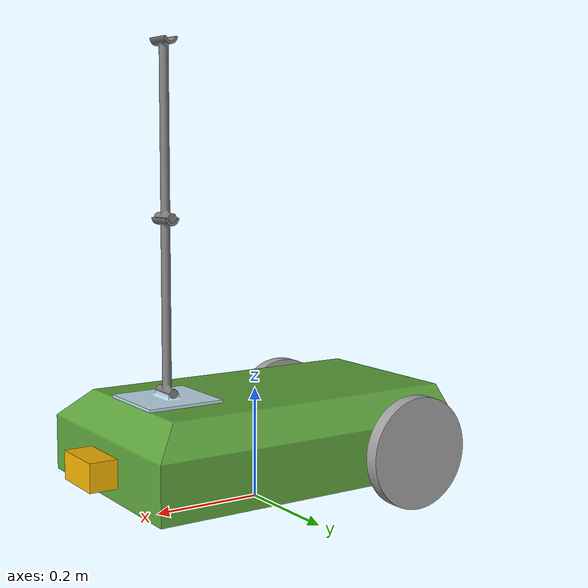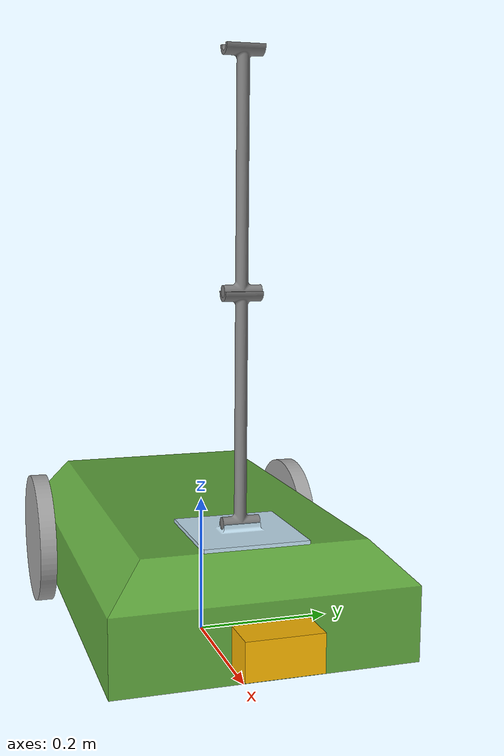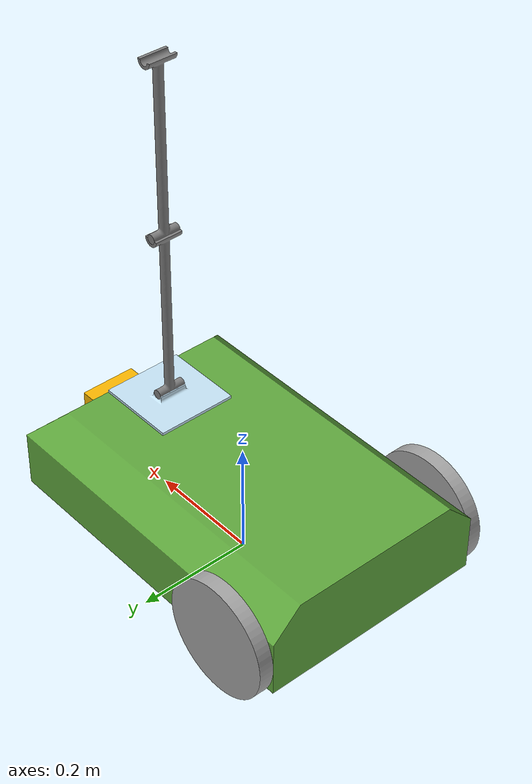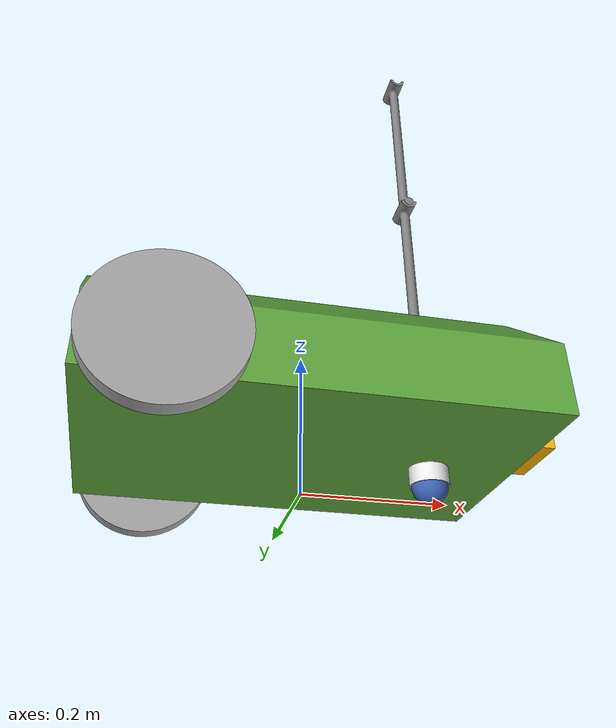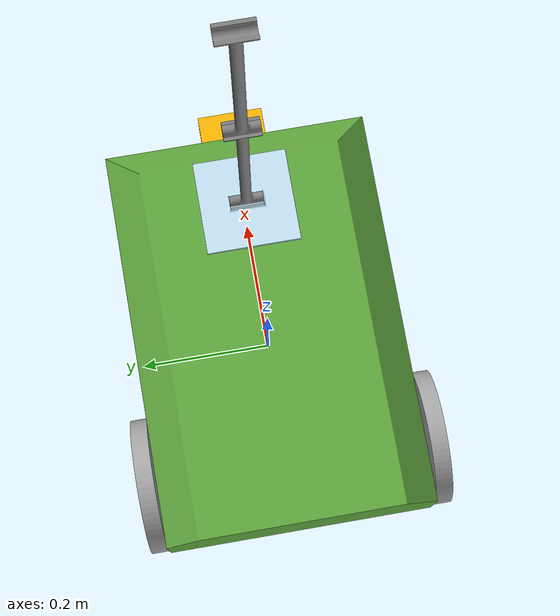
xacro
<!--URDF generated by ONSHAPE BY PTC INC, 1.215-->
<robot name="differential_drive_bot" xmlns:xacro="http://www.ros.org/wiki/xacro">

    <xacro:property name="base_link_l" value="0.6" />
    <xacro:property name="base_link_b" value="0.4" />
    <xacro:property name="base_link_h" value="${0.15+0.03}" />

    <xacro:property name="camera_l" value="0.1" />
    <xacro:property name="camera_b" value="0.07" />
    <xacro:property name="camera_h" value="0.05" />

    <xacro:property name="arm_l" value="0.02" />
    <xacro:property name="arm_b" value="0.05" />
    <xacro:property name="arm_h" value="0.3" />

    <xacro:property name="wheel_radius" value="0.1" />
    <xacro:property name="wheel_z" value="0.0125" />
    <xacro:property name="castor_radius" value="0.025" />

    <xacro:macro name="box_collision" params="l:=0 b:=0 h:=0 x:=0 y:=0 z:=0 r:=0 p:=0 yw:=0">
        <collision>
            <geometry>
                <box size="${l} ${b} ${h}" />
            </geometry>
            <origin xyz="${x} ${y} ${z}" rpy="${r} ${p} ${yw}" />
        </collision>
    </xacro:macro>

    <xacro:macro name="sphere_collision" params="radius:=0 x:=0 y:=0 z:=0 r:=0 p:=0 yw:=0">
        <collision>
            <geometry>
                <sphere radius="${radius}" />
            </geometry>
            <origin xyz="${x} ${y} ${z}" rpy="${r} ${p} ${yw}" />
        </collision>
    </xacro:macro>

    <link name="arm">
        <inertial>
            <mass value="0.093766" />
            <origin xyz="-1.3918e-10 0.025 0.1436" rpy="0 -0 0" />
            <inertia ixx="0.000966999" ixy="-2.13907e-14" ixz="1.37163e-12" iyy="0.000963032"
                iyz="8.30326e-14" izz="7.85561e-06" />
        </inertial>
        <visual>
            <origin xyz="6.31919e-18 0.025 -1.54597e-34" rpy="0 -0 0" />
            <geometry>
                <mesh filename="package://differential_drive_bot/meshes/arm.stl" scale="1 1 1" />
            </geometry>
            <material name="0.498039_0.498039_0.498039_0.000000_0.000000">
                <color rgba="0.498039 0.498039 0.498039 1" />
            </material>
        </visual>
        <xacro:box_collision l="${arm_l}" b="${arm_b}" h="${arm_h}" y="${arm_b/2}" z="${arm_h/2}" />

    </link>
    <link name="arm_1">
        <inertial>
            <mass value="0.093766" />
            <origin xyz="-1.3918e-10 0.025 0.1436" rpy="0 -0 0" />
            <inertia ixx="0.000966999" ixy="-2.13907e-14" ixz="1.37163e-12" iyy="0.000963032"
                iyz="8.30326e-14" izz="7.85561e-06" />
        </inertial>
        <visual>
            <origin xyz="6.31919e-18 0.025 -1.54597e-34" rpy="0 -0 0" />
            <geometry>
                <mesh filename="package://differential_drive_bot/meshes/arm.stl" scale="1 1 1" />
            </geometry>
            <material name="0.498039_0.498039_0.498039_0.000000_0.000000">
                <color rgba="0.498039 0.498039 0.498039 1" />
            </material>
        </visual>
        <xacro:box_collision l="${arm_l}" b="${arm_b}" h="${arm_h}" y="${arm_b/2}" z="${arm_h/2}" />
    </link>
    <link name="arm_mount">
        <inertial>
            <mass value="0.129701" />
            <origin xyz="-3.43808e-13 1.19522e-12 0.00280878" rpy="0 -0 0" />
            <inertia ixx="0.000202249" ixy="0" ixz="0" iyy="0.000201014" iyz="0" izz="0.000402234" />
        </inertial>
        <visual>
            <origin xyz="-0.07 -0.07 0" rpy="0 -0 0" />
            <geometry>
                <mesh filename="package://differential_drive_bot/meshes/arm_mount.stl" scale="1 1 1" />
            </geometry>
            <material name="0.768627_0.886275_0.952941_0.000000_0.000000">
                <color rgba="0.768627 0.886275 0.952941 1" />
            </material>
        </visual>
    </link>
    <link name="base_link">
        <inertial>
            <mass value="4.4239" />
            <origin xyz="-0.304757 -0.2 0.0690534" rpy="0 -0 0" />
            <inertia ixx="0.0946616" ixy="0" ixz="0.00182626" iyy="0.182845" iyz="0" izz="0.244728" />
        </inertial>
        <visual>
            <origin xyz="0 0 0" rpy="0 -0 0" />
            <geometry>
                <mesh filename="package://differential_drive_bot/meshes/base_link.stl" scale="1 1 1" />
            </geometry>
            <material name="0.372549_0.654902_0.239216_0.000000_0.000000">
                <color rgba="0.372549 0.654902 0.239216 1" />
            </material>
        </visual>
        <xacro:box_collision l="${base_link_l}" b="${base_link_b}" h="${base_link_h}"
            x="${-base_link_l/2}" y="${-base_link_b/2}" z="${(base_link_h/2) - 0.025}" />
    </link>
    <link name="camera_link">
        <inertial>
            <mass value="0.1675" />
            <origin xyz="-6.99007e-18 1.59925e-18 0.025" rpy="0 -0 0" />
            <inertia ixx="0.000152792" ixy="0" ixz="0" iyy="0.000237479" iyz="0" izz="0.000279979" />
        </inertial>
        <visual>
            <origin xyz="0 0 0" rpy="0 -0 0" />
            <geometry>
                <box size="${0.05} ${0.1} ${camera_h}"/>
            </geometry>
            <material name="0.980392_0.713725_0.003922_0.000000_0.000000">
                <color rgba="0.980392 0.713726 0.00392157 1" />
            </material>
        </visual>
        <xacro:box_collision l="${0.05}" b="${0.1}" h="${camera_h}"
            x="${0}" y="${0}" z="${camera_h/2}" />
    </link>
    <link name="castor">
        <inertial>
            <mass value="0.0818123" />
            <origin xyz="-2.10486e-18 0 0" rpy="0 -0 0" />
            <inertia ixx="2.04531e-05" ixy="0" ixz="0" iyy="2.04531e-05" iyz="0" izz="2.04531e-05" />
        </inertial>
        <visual>
            <origin xyz="0 0 0" rpy="0 -0 0" />
            <geometry>
                <mesh filename="package://differential_drive_bot/meshes/castor.stl" scale="1 1 1" />
            </geometry>
            <material name="0.231373_0.380392_0.705882_0.000000_0.000000">
                <color rgba="0.231373 0.380392 0.705882 1" />
            </material>
        </visual>
        <xacro:sphere_collision radius="${castor_radius}" />
    </link>
    <link name="castor_holder">
        <inertial>
            <mass value="0.00787853" />
            <origin xyz="-9.31988e-18 -1.84889e-32 -0.0125" rpy="0 -0 0" />
            <inertia ixx="3.23134e-06" ixy="0" ixz="0" iyy="3.23134e-06" iyz="0" izz="5.64201e-06" />
        </inertial>
        <visual>
            <origin xyz="0 -2.92793e-17 -0.025" rpy="0 -0 0" />
            <geometry>
                <mesh filename="package://differential_drive_bot/meshes/castor_holder.stl"
                    scale="1 1 1" />
            </geometry>
            <material name="0.917647_0.917647_0.917647_0.000000_0.000000">
                <color rgba="0.917647 0.917647 0.917647 1" />
            </material>
        </visual>
    </link>
    <link name="root" />
    <link name="wheel_left">
        <inertial>
            <mass value="0.981748" />
            <origin xyz="-1.94909e-18 6.12323e-18 0.0125" rpy="0 -0 0" />
            <inertia ixx="0.0025055" ixy="0" ixz="0" iyy="0.0025055" iyz="0" izz="0.00490874" />
        </inertial>
        <visual>
            <origin xyz="0 0 0" rpy="0 -0 0" />
            <geometry>
                <mesh filename="package://differential_drive_bot/meshes/wheel_left.stl"
                    scale="1 1 1" />
            </geometry>
            <material name="0.647059_0.647059_0.647059_0.000000_0.000000">
                <color rgba="0.647059 0.647059 0.647059 1" />
            </material>
        </visual>
        <xacro:sphere_collision radius="${wheel_radius}" z="${wheel_z}" />
    </link>
    <link name="wheel_right">
        <inertial>
            <mass value="0.981748" />
            <origin xyz="-1.94909e-18 4.62223e-33 0.0125" rpy="0 -0 0" />
            <inertia ixx="0.0025055" ixy="0" ixz="0" iyy="0.0025055" iyz="0" izz="0.00490874" />
        </inertial>
        <visual>
            <origin xyz="0 -6.12323e-18 0" rpy="0 -0 0" />
            <geometry>
                <mesh filename="package://differential_drive_bot/meshes/wheel_right.stl"
                    scale="1 1 1" />
            </geometry>
            <material name="0.647059_0.647059_0.647059_0.000000_0.000000">
                <color rgba="0.647059 0.647059 0.647059 1" />
            </material>
        </visual>
        <xacro:sphere_collision radius="${wheel_radius}" z="${wheel_z}" />
    </link>
    <joint name="arm_1_arm_2" type="revolute">
        <origin xyz="0 -2.08167e-17 0.3" rpy="6.57465e-28 -5.76855e-30 5.50724e-28" />
        <axis xyz="-1.38778e-16 -1 0" />
        <parent link="arm_1" />
        <child link="arm" />
        <limit effort="100" velocity="100" lower="-2.61799" upper="2.61799" />
        <dynamics friction="0.3" damping="0.3" />
    </joint>
    <joint name="arm_mount_arm_1" type="revolute">
        <origin xyz="-2.77556e-17 -0.025 0.015" rpy="-4.18451e-28 5.55112e-17 1.38778e-16" />
        <axis xyz="-1.38778e-16 -1 0" />
        <parent link="arm_mount" />
        <child link="arm_1" />
        <limit effort="100" velocity="100" lower="-1.5708" upper="1.5708" />
        <dynamics friction="0.3" damping="0.3" />
    </joint>
    <joint name="base_link_arm_mount" type="fixed">
        <origin xyz="-0.12 -0.2 0.15" rpy="0 -0 0" />
        <axis xyz="0 0 1" />
        <parent link="base_link" />
        <child link="arm_mount" />
    </joint>
    <joint name="base_link_castor_holder" type="fixed">
        <origin xyz="-0.12 -0.2 0" rpy="8.32667e-17 -0 3.14159" />
        <axis xyz="0 0 1" />
        <parent link="base_link" />
        <child link="castor_holder" />
    </joint>
    <joint name="base_link_wheel_1" type="continuous">
        <origin xyz="-0.5 0 0.05" rpy="-1.5708 0 0" />
        <axis xyz="0 0 1" />
        <parent link="base_link" />
        <child link="wheel_left" />
    </joint>
    <joint name="base_link_wheel_2" type="continuous">
        <origin xyz="-0.5 -0.4 0.05" rpy="1.5708 6.16298e-33 9.25186e-17" />
        <axis xyz="0 0 -1" />
        <parent link="base_link" />
        <child link="wheel_right" />
    </joint>
    <joint name="castor_holder_castor" type="fixed">
        <origin xyz="0 0 -0.025" rpy="0 -0 0" />
        <axis xyz="0 0 1" />
        <parent link="castor_holder" />
        <child link="castor" />
    </joint>
    <joint name="base_link_camera" type="fixed">
        <origin xyz="0.025 -0.2 0.05" rpy="${0} -0 ${0}" />
        <parent link="base_link" />
        <child link="camera_link" />
    </joint>
    <joint name="fixed_node_to_root_joint" type="fixed">
        <origin xyz="0.3 0.2 0.05" rpy="0 -0 0" />
        <axis xyz="0 0 1" />
        <parent link="root" />
        <child link="base_link" />
    </joint>

    <!-- Camera OPEN CV SETUP -->
    <link name="camera_link_optical">
    </link>

    <joint name="camera_optical_joint" type="fixed">
        <!-- these values have to be these values otherwise the gazebo camera
        image won't be aligned properly with the frame it is supposedly
        originating from -->
        <origin xyz="0 0 0" rpy="${-pi/2} 0 ${-pi/2}" />
        <parent link="camera_link" />
        <child link="camera_link_optical" />
    </joint>
    <!-- GAZEBO PLUGINS -->

    <gazebo reference="castor">
        <mu1 value="0.1" />
        <mu2 value="0.1" />
    </gazebo>

    <gazebo>
        <plugin
            filename="gz-sim-diff-drive-system"
            name="gz::sim::systems::DiffDrive">
            <left_joint>base_link_wheel_1</left_joint>
            <right_joint>base_link_wheel_2</right_joint>
            <wheel_separation>0.4</wheel_separation>
            <wheel_radius>0.1</wheel_radius>
            <frame_id>odom</frame_id>
            <child_frame_id>root</child_frame_id>
        </plugin>
    </gazebo>

    <gazebo>
        <plugin
            filename="gz-sim-joint-position-controller-system"
            name="gz::sim::systems::JointPositionController">
            <joint_name>arm_mount_arm_1</joint_name>
            <p_gain>5.0</p_gain>
        </plugin>
    </gazebo>

    <gazebo>
        <plugin
            filename="gz-sim-joint-position-controller-system"
            name="gz::sim::systems::JointPositionController">
            <joint_name>arm_1_arm_2</joint_name>
            <p_gain>3.0</p_gain>
        </plugin>
    </gazebo>

    <gazebo>
        <plugin
            filename="gz-sim-joint-state-publisher-system"
            name="gz::sim::systems::JointStatePublisher">
            <joint_name>base_link_wheel_1</joint_name>
            <joint_name>base_link_wheel_2</joint_name>
            <joint_name>arm_mount_arm_1</joint_name>
            <joint_name>arm_1_arm_2</joint_name>
        </plugin>
    </gazebo>

    <gazebo reference="camera_link">
        <sensor name="camera" type="camera">
            <camera>
                <horizontal_fov>1.3962634</horizontal_fov>
                <image>
                    <width>640</width>
                    <height>480</height>
                    <format>R8G8B8</format>
                </image>
                <clip>
                    <near>0.1</near>
                    <far>15</far>
                </clip>
                <noise>
                    <type>gaussian</type>
                    <mean>0.0</mean>
                    <stddev>0.007</stddev>
                </noise>
                <optical_frame_id>camera_link_optical</optical_frame_id>
                <camera_info_topic>camera/camera_info</camera_info_topic>
            </camera>
            <always_on>1</always_on>
            <update_rate>20</update_rate>
            <visualize>true</visualize>
            <topic>camera/image_raw</topic>
        </sensor>
    </gazebo>
</robot>
